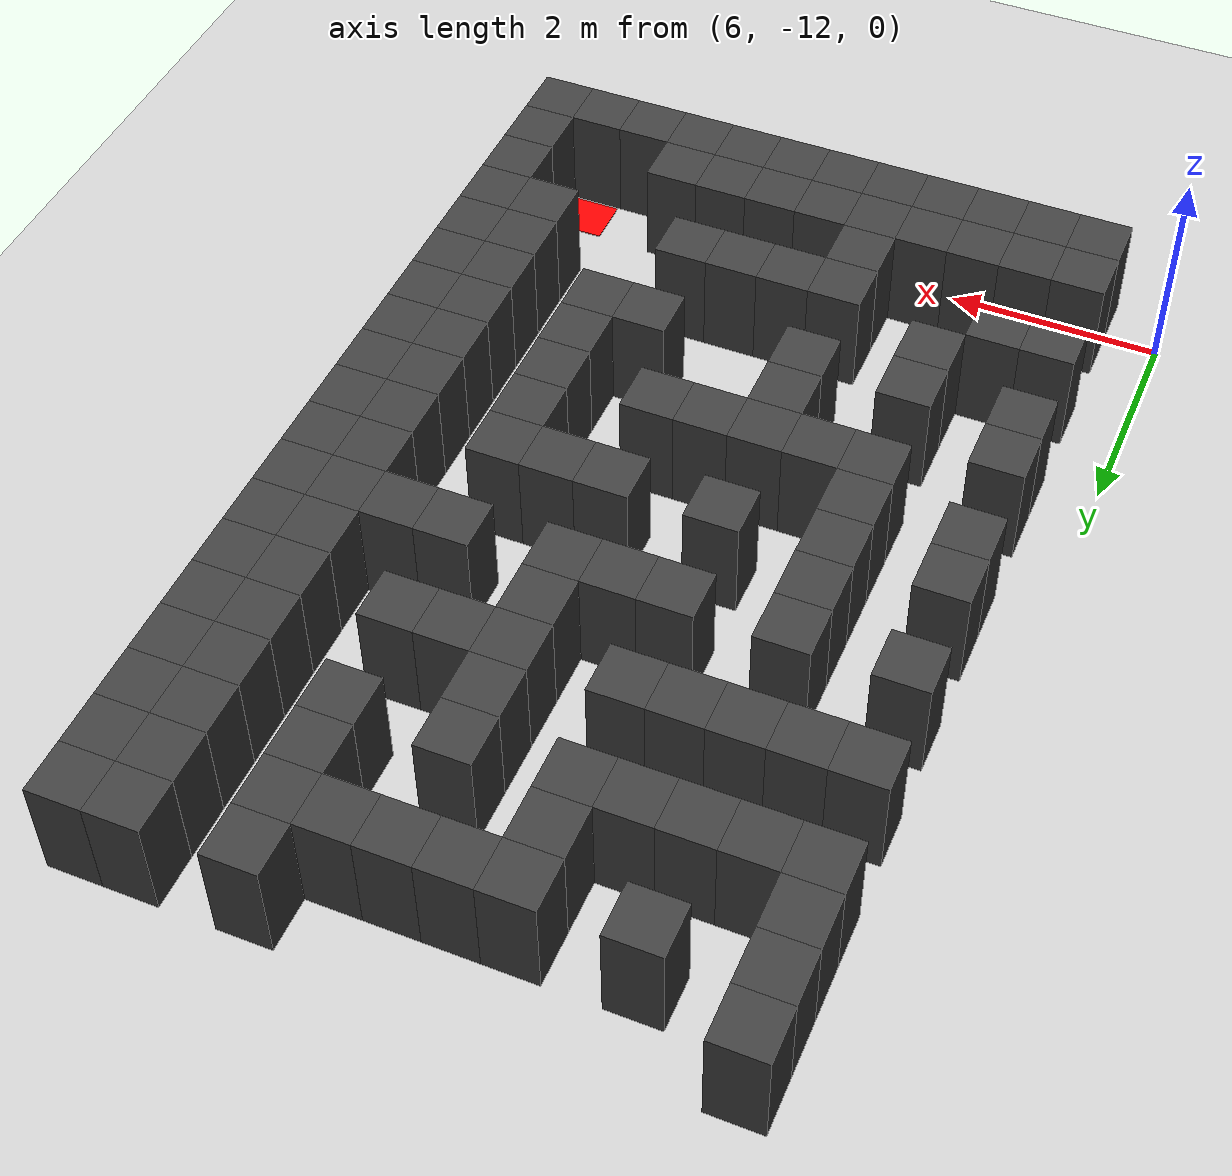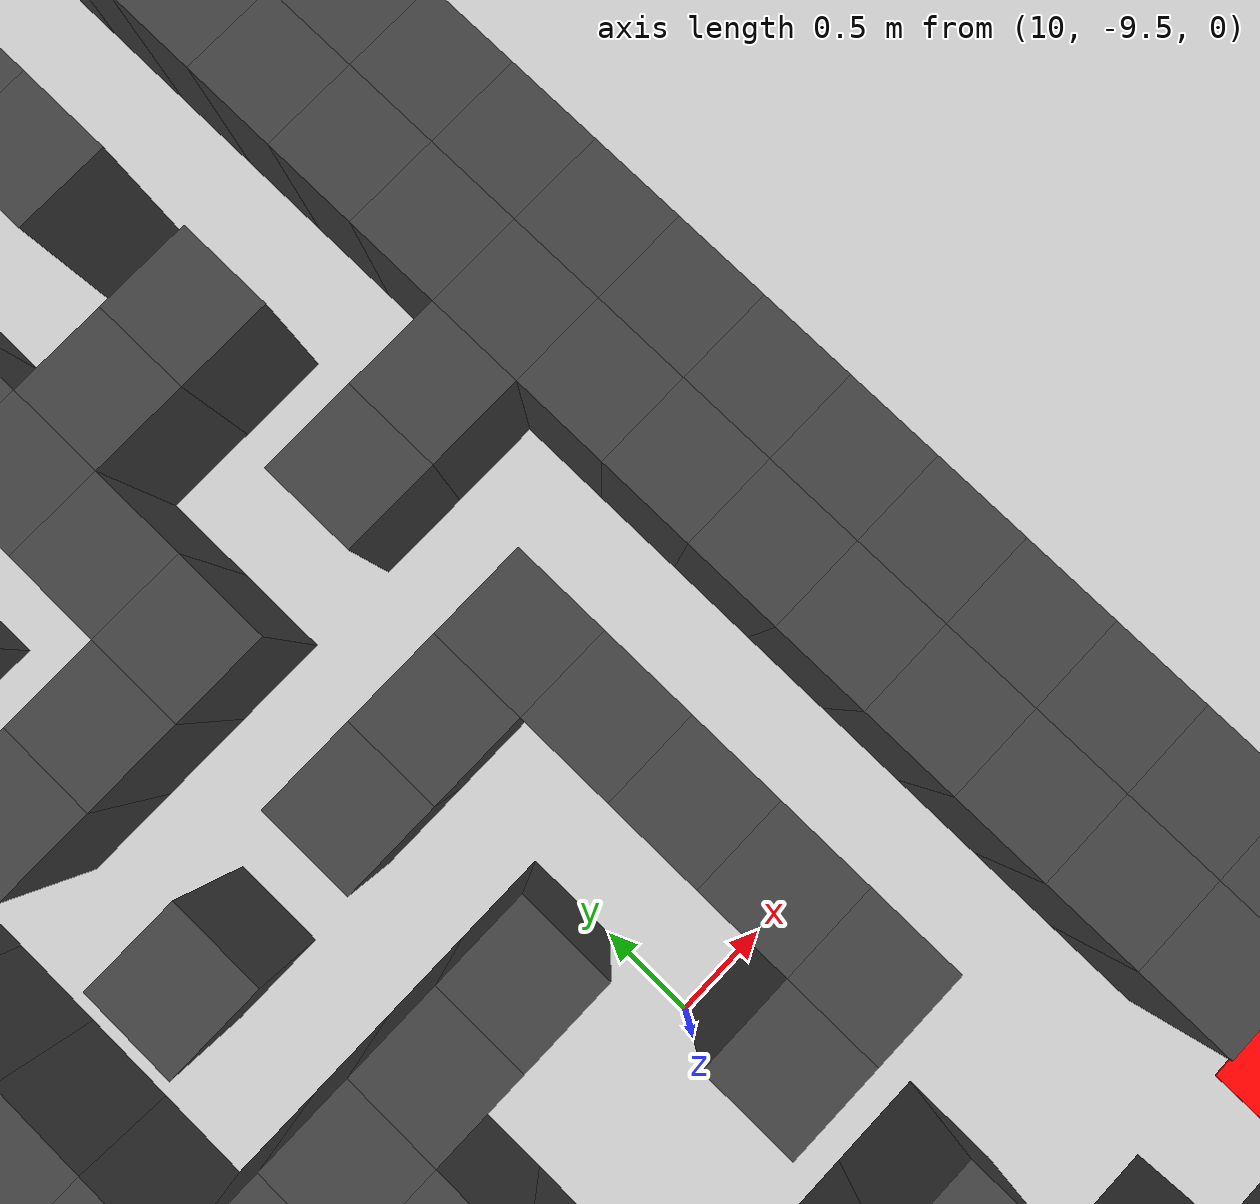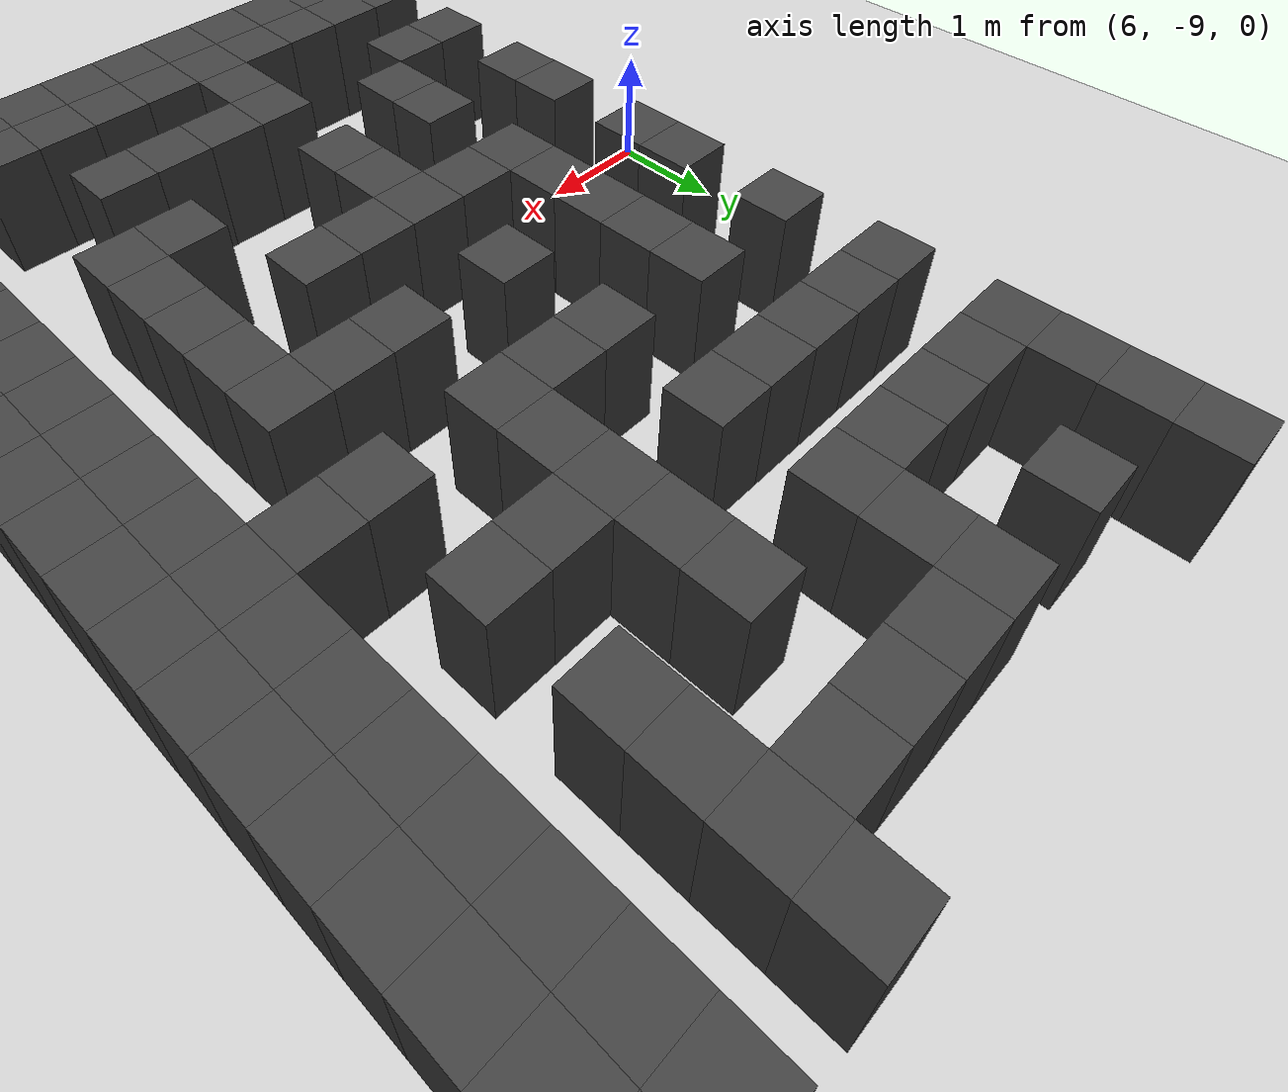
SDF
<sdf version="1.7">
 <world name="map_16603">
  <model name="ground_plane">
   <static>true</static>
   <link name="link">
    <collision name="collision">
     <geometry><plane><normal>0 0 1</normal><size>200 200</size></plane></geometry>
    </collision>
    <visual name="visual">
     <geometry><plane><normal>0 0 1</normal><size>200 200</size></plane></geometry>
     <material><ambient>0.8 0.8 0.8 1</ambient><diffuse>0.8 0.8 0.8 1</diffuse></material>
    </visual>
   </link>
  </model>
  <model name="maze_environment">
   <static>true</static>
   <link name="wall_774">
    <pose>6.750 -3.250 0.500 0 0 0</pose>
    <collision name="col"><geometry><box><size>0.5 0.5 1.0</size></box></geometry></collision>
    <visual name="vis">
     <geometry><box><size>0.5 0.5 1.0</size></box></geometry>
     <material><ambient>0.15 0.15 0.15 1</ambient><diffuse>0.25 0.25 0.25 1</diffuse></material>
    </visual>
   </link>
   <link name="wall_775">
    <pose>10.750 -3.250 0.500 0 0 0</pose>
    <collision name="col"><geometry><box><size>0.5 0.5 1.0</size></box></geometry></collision>
    <visual name="vis">
     <geometry><box><size>0.5 0.5 1.0</size></box></geometry>
     <material><ambient>0.15 0.15 0.15 1</ambient><diffuse>0.25 0.25 0.25 1</diffuse></material>
    </visual>
   </link>
   <link name="wall_776">
    <pose>11.750 -3.250 0.500 0 0 0</pose>
    <collision name="col"><geometry><box><size>0.5 0.5 1.0</size></box></geometry></collision>
    <visual name="vis">
     <geometry><box><size>0.5 0.5 1.0</size></box></geometry>
     <material><ambient>0.15 0.15 0.15 1</ambient><diffuse>0.25 0.25 0.25 1</diffuse></material>
    </visual>
   </link>
   <link name="wall_777">
    <pose>12.250 -3.250 0.500 0 0 0</pose>
    <collision name="col"><geometry><box><size>0.5 0.5 1.0</size></box></geometry></collision>
    <visual name="vis">
     <geometry><box><size>0.5 0.5 1.0</size></box></geometry>
     <material><ambient>0.15 0.15 0.15 1</ambient><diffuse>0.25 0.25 0.25 1</diffuse></material>
    </visual>
   </link>
   <link name="wall_803">
    <pose>6.750 -3.750 0.500 0 0 0</pose>
    <collision name="col"><geometry><box><size>0.5 0.5 1.0</size></box></geometry></collision>
    <visual name="vis">
     <geometry><box><size>0.5 0.5 1.0</size></box></geometry>
     <material><ambient>0.15 0.15 0.15 1</ambient><diffuse>0.25 0.25 0.25 1</diffuse></material>
    </visual>
   </link>
   <link name="wall_804">
    <pose>7.750 -3.750 0.500 0 0 0</pose>
    <collision name="col"><geometry><box><size>0.5 0.5 1.0</size></box></geometry></collision>
    <visual name="vis">
     <geometry><box><size>0.5 0.5 1.0</size></box></geometry>
     <material><ambient>0.15 0.15 0.15 1</ambient><diffuse>0.25 0.25 0.25 1</diffuse></material>
    </visual>
   </link>
   <link name="wall_805">
    <pose>8.750 -3.750 0.500 0 0 0</pose>
    <collision name="col"><geometry><box><size>0.5 0.5 1.0</size></box></geometry></collision>
    <visual name="vis">
     <geometry><box><size>0.5 0.5 1.0</size></box></geometry>
     <material><ambient>0.15 0.15 0.15 1</ambient><diffuse>0.25 0.25 0.25 1</diffuse></material>
    </visual>
   </link>
   <link name="wall_806">
    <pose>9.250 -3.750 0.500 0 0 0</pose>
    <collision name="col"><geometry><box><size>0.5 0.5 1.0</size></box></geometry></collision>
    <visual name="vis">
     <geometry><box><size>0.5 0.5 1.0</size></box></geometry>
     <material><ambient>0.15 0.15 0.15 1</ambient><diffuse>0.25 0.25 0.25 1</diffuse></material>
    </visual>
   </link>
   <link name="wall_807">
    <pose>9.750 -3.750 0.500 0 0 0</pose>
    <collision name="col"><geometry><box><size>0.5 0.5 1.0</size></box></geometry></collision>
    <visual name="vis">
     <geometry><box><size>0.5 0.5 1.0</size></box></geometry>
     <material><ambient>0.15 0.15 0.15 1</ambient><diffuse>0.25 0.25 0.25 1</diffuse></material>
    </visual>
   </link>
   <link name="wall_808">
    <pose>10.250 -3.750 0.500 0 0 0</pose>
    <collision name="col"><geometry><box><size>0.5 0.5 1.0</size></box></geometry></collision>
    <visual name="vis">
     <geometry><box><size>0.5 0.5 1.0</size></box></geometry>
     <material><ambient>0.15 0.15 0.15 1</ambient><diffuse>0.25 0.25 0.25 1</diffuse></material>
    </visual>
   </link>
   <link name="wall_809">
    <pose>10.750 -3.750 0.500 0 0 0</pose>
    <collision name="col"><geometry><box><size>0.5 0.5 1.0</size></box></geometry></collision>
    <visual name="vis">
     <geometry><box><size>0.5 0.5 1.0</size></box></geometry>
     <material><ambient>0.15 0.15 0.15 1</ambient><diffuse>0.25 0.25 0.25 1</diffuse></material>
    </visual>
   </link>
   <link name="wall_810">
    <pose>11.750 -3.750 0.500 0 0 0</pose>
    <collision name="col"><geometry><box><size>0.5 0.5 1.0</size></box></geometry></collision>
    <visual name="vis">
     <geometry><box><size>0.5 0.5 1.0</size></box></geometry>
     <material><ambient>0.15 0.15 0.15 1</ambient><diffuse>0.25 0.25 0.25 1</diffuse></material>
    </visual>
   </link>
   <link name="wall_811">
    <pose>12.250 -3.750 0.500 0 0 0</pose>
    <collision name="col"><geometry><box><size>0.5 0.5 1.0</size></box></geometry></collision>
    <visual name="vis">
     <geometry><box><size>0.5 0.5 1.0</size></box></geometry>
     <material><ambient>0.15 0.15 0.15 1</ambient><diffuse>0.25 0.25 0.25 1</diffuse></material>
    </visual>
   </link>
   <link name="wall_821">
    <pose>6.750 -4.250 0.500 0 0 0</pose>
    <collision name="col"><geometry><box><size>0.5 0.5 1.0</size></box></geometry></collision>
    <visual name="vis">
     <geometry><box><size>0.5 0.5 1.0</size></box></geometry>
     <material><ambient>0.15 0.15 0.15 1</ambient><diffuse>0.25 0.25 0.25 1</diffuse></material>
    </visual>
   </link>
   <link name="wall_822">
    <pose>8.750 -4.250 0.500 0 0 0</pose>
    <collision name="col"><geometry><box><size>0.5 0.5 1.0</size></box></geometry></collision>
    <visual name="vis">
     <geometry><box><size>0.5 0.5 1.0</size></box></geometry>
     <material><ambient>0.15 0.15 0.15 1</ambient><diffuse>0.25 0.25 0.25 1</diffuse></material>
    </visual>
   </link>
   <link name="wall_823">
    <pose>10.750 -4.250 0.500 0 0 0</pose>
    <collision name="col"><geometry><box><size>0.5 0.5 1.0</size></box></geometry></collision>
    <visual name="vis">
     <geometry><box><size>0.5 0.5 1.0</size></box></geometry>
     <material><ambient>0.15 0.15 0.15 1</ambient><diffuse>0.25 0.25 0.25 1</diffuse></material>
    </visual>
   </link>
   <link name="wall_824">
    <pose>11.750 -4.250 0.500 0 0 0</pose>
    <collision name="col"><geometry><box><size>0.5 0.5 1.0</size></box></geometry></collision>
    <visual name="vis">
     <geometry><box><size>0.5 0.5 1.0</size></box></geometry>
     <material><ambient>0.15 0.15 0.15 1</ambient><diffuse>0.25 0.25 0.25 1</diffuse></material>
    </visual>
   </link>
   <link name="wall_825">
    <pose>12.250 -4.250 0.500 0 0 0</pose>
    <collision name="col"><geometry><box><size>0.5 0.5 1.0</size></box></geometry></collision>
    <visual name="vis">
     <geometry><box><size>0.5 0.5 1.0</size></box></geometry>
     <material><ambient>0.15 0.15 0.15 1</ambient><diffuse>0.25 0.25 0.25 1</diffuse></material>
    </visual>
   </link>
   <link name="wall_848">
    <pose>6.750 -4.750 0.500 0 0 0</pose>
    <collision name="col"><geometry><box><size>0.5 0.5 1.0</size></box></geometry></collision>
    <visual name="vis">
     <geometry><box><size>0.5 0.5 1.0</size></box></geometry>
     <material><ambient>0.15 0.15 0.15 1</ambient><diffuse>0.25 0.25 0.25 1</diffuse></material>
    </visual>
   </link>
   <link name="wall_849">
    <pose>7.250 -4.750 0.500 0 0 0</pose>
    <collision name="col"><geometry><box><size>0.5 0.5 1.0</size></box></geometry></collision>
    <visual name="vis">
     <geometry><box><size>0.5 0.5 1.0</size></box></geometry>
     <material><ambient>0.15 0.15 0.15 1</ambient><diffuse>0.25 0.25 0.25 1</diffuse></material>
    </visual>
   </link>
   <link name="wall_850">
    <pose>7.750 -4.750 0.500 0 0 0</pose>
    <collision name="col"><geometry><box><size>0.5 0.5 1.0</size></box></geometry></collision>
    <visual name="vis">
     <geometry><box><size>0.5 0.5 1.0</size></box></geometry>
     <material><ambient>0.15 0.15 0.15 1</ambient><diffuse>0.25 0.25 0.25 1</diffuse></material>
    </visual>
   </link>
   <link name="wall_851">
    <pose>8.250 -4.750 0.500 0 0 0</pose>
    <collision name="col"><geometry><box><size>0.5 0.5 1.0</size></box></geometry></collision>
    <visual name="vis">
     <geometry><box><size>0.5 0.5 1.0</size></box></geometry>
     <material><ambient>0.15 0.15 0.15 1</ambient><diffuse>0.25 0.25 0.25 1</diffuse></material>
    </visual>
   </link>
   <link name="wall_852">
    <pose>8.750 -4.750 0.500 0 0 0</pose>
    <collision name="col"><geometry><box><size>0.5 0.5 1.0</size></box></geometry></collision>
    <visual name="vis">
     <geometry><box><size>0.5 0.5 1.0</size></box></geometry>
     <material><ambient>0.15 0.15 0.15 1</ambient><diffuse>0.25 0.25 0.25 1</diffuse></material>
    </visual>
   </link>
   <link name="wall_853">
    <pose>9.750 -4.750 0.500 0 0 0</pose>
    <collision name="col"><geometry><box><size>0.5 0.5 1.0</size></box></geometry></collision>
    <visual name="vis">
     <geometry><box><size>0.5 0.5 1.0</size></box></geometry>
     <material><ambient>0.15 0.15 0.15 1</ambient><diffuse>0.25 0.25 0.25 1</diffuse></material>
    </visual>
   </link>
   <link name="wall_854">
    <pose>10.750 -4.750 0.500 0 0 0</pose>
    <collision name="col"><geometry><box><size>0.5 0.5 1.0</size></box></geometry></collision>
    <visual name="vis">
     <geometry><box><size>0.5 0.5 1.0</size></box></geometry>
     <material><ambient>0.15 0.15 0.15 1</ambient><diffuse>0.25 0.25 0.25 1</diffuse></material>
    </visual>
   </link>
   <link name="wall_855">
    <pose>11.750 -4.750 0.500 0 0 0</pose>
    <collision name="col"><geometry><box><size>0.5 0.5 1.0</size></box></geometry></collision>
    <visual name="vis">
     <geometry><box><size>0.5 0.5 1.0</size></box></geometry>
     <material><ambient>0.15 0.15 0.15 1</ambient><diffuse>0.25 0.25 0.25 1</diffuse></material>
    </visual>
   </link>
   <link name="wall_856">
    <pose>12.250 -4.750 0.500 0 0 0</pose>
    <collision name="col"><geometry><box><size>0.5 0.5 1.0</size></box></geometry></collision>
    <visual name="vis">
     <geometry><box><size>0.5 0.5 1.0</size></box></geometry>
     <material><ambient>0.15 0.15 0.15 1</ambient><diffuse>0.25 0.25 0.25 1</diffuse></material>
    </visual>
   </link>
   <link name="wall_868">
    <pose>9.750 -5.250 0.500 0 0 0</pose>
    <collision name="col"><geometry><box><size>0.5 0.5 1.0</size></box></geometry></collision>
    <visual name="vis">
     <geometry><box><size>0.5 0.5 1.0</size></box></geometry>
     <material><ambient>0.15 0.15 0.15 1</ambient><diffuse>0.25 0.25 0.25 1</diffuse></material>
    </visual>
   </link>
   <link name="wall_869">
    <pose>11.750 -5.250 0.500 0 0 0</pose>
    <collision name="col"><geometry><box><size>0.5 0.5 1.0</size></box></geometry></collision>
    <visual name="vis">
     <geometry><box><size>0.5 0.5 1.0</size></box></geometry>
     <material><ambient>0.15 0.15 0.15 1</ambient><diffuse>0.25 0.25 0.25 1</diffuse></material>
    </visual>
   </link>
   <link name="wall_870">
    <pose>12.250 -5.250 0.500 0 0 0</pose>
    <collision name="col"><geometry><box><size>0.5 0.5 1.0</size></box></geometry></collision>
    <visual name="vis">
     <geometry><box><size>0.5 0.5 1.0</size></box></geometry>
     <material><ambient>0.15 0.15 0.15 1</ambient><diffuse>0.25 0.25 0.25 1</diffuse></material>
    </visual>
   </link>
   <link name="wall_897">
    <pose>6.750 -5.750 0.500 0 0 0</pose>
    <collision name="col"><geometry><box><size>0.5 0.5 1.0</size></box></geometry></collision>
    <visual name="vis">
     <geometry><box><size>0.5 0.5 1.0</size></box></geometry>
     <material><ambient>0.15 0.15 0.15 1</ambient><diffuse>0.25 0.25 0.25 1</diffuse></material>
    </visual>
   </link>
   <link name="wall_898">
    <pose>7.250 -5.750 0.500 0 0 0</pose>
    <collision name="col"><geometry><box><size>0.5 0.5 1.0</size></box></geometry></collision>
    <visual name="vis">
     <geometry><box><size>0.5 0.5 1.0</size></box></geometry>
     <material><ambient>0.15 0.15 0.15 1</ambient><diffuse>0.25 0.25 0.25 1</diffuse></material>
    </visual>
   </link>
   <link name="wall_899">
    <pose>7.750 -5.750 0.500 0 0 0</pose>
    <collision name="col"><geometry><box><size>0.5 0.5 1.0</size></box></geometry></collision>
    <visual name="vis">
     <geometry><box><size>0.5 0.5 1.0</size></box></geometry>
     <material><ambient>0.15 0.15 0.15 1</ambient><diffuse>0.25 0.25 0.25 1</diffuse></material>
    </visual>
   </link>
   <link name="wall_900">
    <pose>8.250 -5.750 0.500 0 0 0</pose>
    <collision name="col"><geometry><box><size>0.5 0.5 1.0</size></box></geometry></collision>
    <visual name="vis">
     <geometry><box><size>0.5 0.5 1.0</size></box></geometry>
     <material><ambient>0.15 0.15 0.15 1</ambient><diffuse>0.25 0.25 0.25 1</diffuse></material>
    </visual>
   </link>
   <link name="wall_901">
    <pose>8.750 -5.750 0.500 0 0 0</pose>
    <collision name="col"><geometry><box><size>0.5 0.5 1.0</size></box></geometry></collision>
    <visual name="vis">
     <geometry><box><size>0.5 0.5 1.0</size></box></geometry>
     <material><ambient>0.15 0.15 0.15 1</ambient><diffuse>0.25 0.25 0.25 1</diffuse></material>
    </visual>
   </link>
   <link name="wall_902">
    <pose>9.750 -5.750 0.500 0 0 0</pose>
    <collision name="col"><geometry><box><size>0.5 0.5 1.0</size></box></geometry></collision>
    <visual name="vis">
     <geometry><box><size>0.5 0.5 1.0</size></box></geometry>
     <material><ambient>0.15 0.15 0.15 1</ambient><diffuse>0.25 0.25 0.25 1</diffuse></material>
    </visual>
   </link>
   <link name="wall_903">
    <pose>10.250 -5.750 0.500 0 0 0</pose>
    <collision name="col"><geometry><box><size>0.5 0.5 1.0</size></box></geometry></collision>
    <visual name="vis">
     <geometry><box><size>0.5 0.5 1.0</size></box></geometry>
     <material><ambient>0.15 0.15 0.15 1</ambient><diffuse>0.25 0.25 0.25 1</diffuse></material>
    </visual>
   </link>
   <link name="wall_904">
    <pose>10.750 -5.750 0.500 0 0 0</pose>
    <collision name="col"><geometry><box><size>0.5 0.5 1.0</size></box></geometry></collision>
    <visual name="vis">
     <geometry><box><size>0.5 0.5 1.0</size></box></geometry>
     <material><ambient>0.15 0.15 0.15 1</ambient><diffuse>0.25 0.25 0.25 1</diffuse></material>
    </visual>
   </link>
   <link name="wall_905">
    <pose>11.750 -5.750 0.500 0 0 0</pose>
    <collision name="col"><geometry><box><size>0.5 0.5 1.0</size></box></geometry></collision>
    <visual name="vis">
     <geometry><box><size>0.5 0.5 1.0</size></box></geometry>
     <material><ambient>0.15 0.15 0.15 1</ambient><diffuse>0.25 0.25 0.25 1</diffuse></material>
    </visual>
   </link>
   <link name="wall_906">
    <pose>12.250 -5.750 0.500 0 0 0</pose>
    <collision name="col"><geometry><box><size>0.5 0.5 1.0</size></box></geometry></collision>
    <visual name="vis">
     <geometry><box><size>0.5 0.5 1.0</size></box></geometry>
     <material><ambient>0.15 0.15 0.15 1</ambient><diffuse>0.25 0.25 0.25 1</diffuse></material>
    </visual>
   </link>
   <link name="wall_917">
    <pose>9.750 -6.250 0.500 0 0 0</pose>
    <collision name="col"><geometry><box><size>0.5 0.5 1.0</size></box></geometry></collision>
    <visual name="vis">
     <geometry><box><size>0.5 0.5 1.0</size></box></geometry>
     <material><ambient>0.15 0.15 0.15 1</ambient><diffuse>0.25 0.25 0.25 1</diffuse></material>
    </visual>
   </link>
   <link name="wall_918">
    <pose>11.750 -6.250 0.500 0 0 0</pose>
    <collision name="col"><geometry><box><size>0.5 0.5 1.0</size></box></geometry></collision>
    <visual name="vis">
     <geometry><box><size>0.5 0.5 1.0</size></box></geometry>
     <material><ambient>0.15 0.15 0.15 1</ambient><diffuse>0.25 0.25 0.25 1</diffuse></material>
    </visual>
   </link>
   <link name="wall_919">
    <pose>12.250 -6.250 0.500 0 0 0</pose>
    <collision name="col"><geometry><box><size>0.5 0.5 1.0</size></box></geometry></collision>
    <visual name="vis">
     <geometry><box><size>0.5 0.5 1.0</size></box></geometry>
     <material><ambient>0.15 0.15 0.15 1</ambient><diffuse>0.25 0.25 0.25 1</diffuse></material>
    </visual>
   </link>
   <link name="wall_949">
    <pose>6.750 -6.750 0.500 0 0 0</pose>
    <collision name="col"><geometry><box><size>0.5 0.5 1.0</size></box></geometry></collision>
    <visual name="vis">
     <geometry><box><size>0.5 0.5 1.0</size></box></geometry>
     <material><ambient>0.15 0.15 0.15 1</ambient><diffuse>0.25 0.25 0.25 1</diffuse></material>
    </visual>
   </link>
   <link name="wall_950">
    <pose>7.750 -6.750 0.500 0 0 0</pose>
    <collision name="col"><geometry><box><size>0.5 0.5 1.0</size></box></geometry></collision>
    <visual name="vis">
     <geometry><box><size>0.5 0.5 1.0</size></box></geometry>
     <material><ambient>0.15 0.15 0.15 1</ambient><diffuse>0.25 0.25 0.25 1</diffuse></material>
    </visual>
   </link>
   <link name="wall_951">
    <pose>8.750 -6.750 0.500 0 0 0</pose>
    <collision name="col"><geometry><box><size>0.5 0.5 1.0</size></box></geometry></collision>
    <visual name="vis">
     <geometry><box><size>0.5 0.5 1.0</size></box></geometry>
     <material><ambient>0.15 0.15 0.15 1</ambient><diffuse>0.25 0.25 0.25 1</diffuse></material>
    </visual>
   </link>
   <link name="wall_952">
    <pose>9.250 -6.750 0.500 0 0 0</pose>
    <collision name="col"><geometry><box><size>0.5 0.5 1.0</size></box></geometry></collision>
    <visual name="vis">
     <geometry><box><size>0.5 0.5 1.0</size></box></geometry>
     <material><ambient>0.15 0.15 0.15 1</ambient><diffuse>0.25 0.25 0.25 1</diffuse></material>
    </visual>
   </link>
   <link name="wall_953">
    <pose>9.750 -6.750 0.500 0 0 0</pose>
    <collision name="col"><geometry><box><size>0.5 0.5 1.0</size></box></geometry></collision>
    <visual name="vis">
     <geometry><box><size>0.5 0.5 1.0</size></box></geometry>
     <material><ambient>0.15 0.15 0.15 1</ambient><diffuse>0.25 0.25 0.25 1</diffuse></material>
    </visual>
   </link>
   <link name="wall_954">
    <pose>10.750 -6.750 0.500 0 0 0</pose>
    <collision name="col"><geometry><box><size>0.5 0.5 1.0</size></box></geometry></collision>
    <visual name="vis">
     <geometry><box><size>0.5 0.5 1.0</size></box></geometry>
     <material><ambient>0.15 0.15 0.15 1</ambient><diffuse>0.25 0.25 0.25 1</diffuse></material>
    </visual>
   </link>
   <link name="wall_955">
    <pose>11.250 -6.750 0.500 0 0 0</pose>
    <collision name="col"><geometry><box><size>0.5 0.5 1.0</size></box></geometry></collision>
    <visual name="vis">
     <geometry><box><size>0.5 0.5 1.0</size></box></geometry>
     <material><ambient>0.15 0.15 0.15 1</ambient><diffuse>0.25 0.25 0.25 1</diffuse></material>
    </visual>
   </link>
   <link name="wall_956">
    <pose>11.750 -6.750 0.500 0 0 0</pose>
    <collision name="col"><geometry><box><size>0.5 0.5 1.0</size></box></geometry></collision>
    <visual name="vis">
     <geometry><box><size>0.5 0.5 1.0</size></box></geometry>
     <material><ambient>0.15 0.15 0.15 1</ambient><diffuse>0.25 0.25 0.25 1</diffuse></material>
    </visual>
   </link>
   <link name="wall_957">
    <pose>12.250 -6.750 0.500 0 0 0</pose>
    <collision name="col"><geometry><box><size>0.5 0.5 1.0</size></box></geometry></collision>
    <visual name="vis">
     <geometry><box><size>0.5 0.5 1.0</size></box></geometry>
     <material><ambient>0.15 0.15 0.15 1</ambient><diffuse>0.25 0.25 0.25 1</diffuse></material>
    </visual>
   </link>
   <link name="wall_965">
    <pose>7.750 -7.250 0.500 0 0 0</pose>
    <collision name="col"><geometry><box><size>0.5 0.5 1.0</size></box></geometry></collision>
    <visual name="vis">
     <geometry><box><size>0.5 0.5 1.0</size></box></geometry>
     <material><ambient>0.15 0.15 0.15 1</ambient><diffuse>0.25 0.25 0.25 1</diffuse></material>
    </visual>
   </link>
   <link name="wall_966">
    <pose>11.750 -7.250 0.500 0 0 0</pose>
    <collision name="col"><geometry><box><size>0.5 0.5 1.0</size></box></geometry></collision>
    <visual name="vis">
     <geometry><box><size>0.5 0.5 1.0</size></box></geometry>
     <material><ambient>0.15 0.15 0.15 1</ambient><diffuse>0.25 0.25 0.25 1</diffuse></material>
    </visual>
   </link>
   <link name="wall_967">
    <pose>12.250 -7.250 0.500 0 0 0</pose>
    <collision name="col"><geometry><box><size>0.5 0.5 1.0</size></box></geometry></collision>
    <visual name="vis">
     <geometry><box><size>0.5 0.5 1.0</size></box></geometry>
     <material><ambient>0.15 0.15 0.15 1</ambient><diffuse>0.25 0.25 0.25 1</diffuse></material>
    </visual>
   </link>
   <link name="wall_993">
    <pose>6.750 -7.750 0.500 0 0 0</pose>
    <collision name="col"><geometry><box><size>0.5 0.5 1.0</size></box></geometry></collision>
    <visual name="vis">
     <geometry><box><size>0.5 0.5 1.0</size></box></geometry>
     <material><ambient>0.15 0.15 0.15 1</ambient><diffuse>0.25 0.25 0.25 1</diffuse></material>
    </visual>
   </link>
   <link name="wall_994">
    <pose>7.750 -7.750 0.500 0 0 0</pose>
    <collision name="col"><geometry><box><size>0.5 0.5 1.0</size></box></geometry></collision>
    <visual name="vis">
     <geometry><box><size>0.5 0.5 1.0</size></box></geometry>
     <material><ambient>0.15 0.15 0.15 1</ambient><diffuse>0.25 0.25 0.25 1</diffuse></material>
    </visual>
   </link>
   <link name="wall_995">
    <pose>8.750 -7.750 0.500 0 0 0</pose>
    <collision name="col"><geometry><box><size>0.5 0.5 1.0</size></box></geometry></collision>
    <visual name="vis">
     <geometry><box><size>0.5 0.5 1.0</size></box></geometry>
     <material><ambient>0.15 0.15 0.15 1</ambient><diffuse>0.25 0.25 0.25 1</diffuse></material>
    </visual>
   </link>
   <link name="wall_996">
    <pose>9.750 -7.750 0.500 0 0 0</pose>
    <collision name="col"><geometry><box><size>0.5 0.5 1.0</size></box></geometry></collision>
    <visual name="vis">
     <geometry><box><size>0.5 0.5 1.0</size></box></geometry>
     <material><ambient>0.15 0.15 0.15 1</ambient><diffuse>0.25 0.25 0.25 1</diffuse></material>
    </visual>
   </link>
   <link name="wall_997">
    <pose>10.250 -7.750 0.500 0 0 0</pose>
    <collision name="col"><geometry><box><size>0.5 0.5 1.0</size></box></geometry></collision>
    <visual name="vis">
     <geometry><box><size>0.5 0.5 1.0</size></box></geometry>
     <material><ambient>0.15 0.15 0.15 1</ambient><diffuse>0.25 0.25 0.25 1</diffuse></material>
    </visual>
   </link>
   <link name="wall_998">
    <pose>10.750 -7.750 0.500 0 0 0</pose>
    <collision name="col"><geometry><box><size>0.5 0.5 1.0</size></box></geometry></collision>
    <visual name="vis">
     <geometry><box><size>0.5 0.5 1.0</size></box></geometry>
     <material><ambient>0.15 0.15 0.15 1</ambient><diffuse>0.25 0.25 0.25 1</diffuse></material>
    </visual>
   </link>
   <link name="wall_999">
    <pose>11.750 -7.750 0.500 0 0 0</pose>
    <collision name="col"><geometry><box><size>0.5 0.5 1.0</size></box></geometry></collision>
    <visual name="vis">
     <geometry><box><size>0.5 0.5 1.0</size></box></geometry>
     <material><ambient>0.15 0.15 0.15 1</ambient><diffuse>0.25 0.25 0.25 1</diffuse></material>
    </visual>
   </link>
   <link name="wall_1000">
    <pose>12.250 -7.750 0.500 0 0 0</pose>
    <collision name="col"><geometry><box><size>0.5 0.5 1.0</size></box></geometry></collision>
    <visual name="vis">
     <geometry><box><size>0.5 0.5 1.0</size></box></geometry>
     <material><ambient>0.15 0.15 0.15 1</ambient><diffuse>0.25 0.25 0.25 1</diffuse></material>
    </visual>
   </link>
   <link name="wall_1009">
    <pose>6.750 -8.250 0.500 0 0 0</pose>
    <collision name="col"><geometry><box><size>0.5 0.5 1.0</size></box></geometry></collision>
    <visual name="vis">
     <geometry><box><size>0.5 0.5 1.0</size></box></geometry>
     <material><ambient>0.15 0.15 0.15 1</ambient><diffuse>0.25 0.25 0.25 1</diffuse></material>
    </visual>
   </link>
   <link name="wall_1010">
    <pose>7.750 -8.250 0.500 0 0 0</pose>
    <collision name="col"><geometry><box><size>0.5 0.5 1.0</size></box></geometry></collision>
    <visual name="vis">
     <geometry><box><size>0.5 0.5 1.0</size></box></geometry>
     <material><ambient>0.15 0.15 0.15 1</ambient><diffuse>0.25 0.25 0.25 1</diffuse></material>
    </visual>
   </link>
   <link name="wall_1011">
    <pose>10.750 -8.250 0.500 0 0 0</pose>
    <collision name="col"><geometry><box><size>0.5 0.5 1.0</size></box></geometry></collision>
    <visual name="vis">
     <geometry><box><size>0.5 0.5 1.0</size></box></geometry>
     <material><ambient>0.15 0.15 0.15 1</ambient><diffuse>0.25 0.25 0.25 1</diffuse></material>
    </visual>
   </link>
   <link name="wall_1012">
    <pose>11.750 -8.250 0.500 0 0 0</pose>
    <collision name="col"><geometry><box><size>0.5 0.5 1.0</size></box></geometry></collision>
    <visual name="vis">
     <geometry><box><size>0.5 0.5 1.0</size></box></geometry>
     <material><ambient>0.15 0.15 0.15 1</ambient><diffuse>0.25 0.25 0.25 1</diffuse></material>
    </visual>
   </link>
   <link name="wall_1013">
    <pose>12.250 -8.250 0.500 0 0 0</pose>
    <collision name="col"><geometry><box><size>0.5 0.5 1.0</size></box></geometry></collision>
    <visual name="vis">
     <geometry><box><size>0.5 0.5 1.0</size></box></geometry>
     <material><ambient>0.15 0.15 0.15 1</ambient><diffuse>0.25 0.25 0.25 1</diffuse></material>
    </visual>
   </link>
   <link name="wall_1039">
    <pose>7.750 -8.750 0.500 0 0 0</pose>
    <collision name="col"><geometry><box><size>0.5 0.5 1.0</size></box></geometry></collision>
    <visual name="vis">
     <geometry><box><size>0.5 0.5 1.0</size></box></geometry>
     <material><ambient>0.15 0.15 0.15 1</ambient><diffuse>0.25 0.25 0.25 1</diffuse></material>
    </visual>
   </link>
   <link name="wall_1040">
    <pose>8.250 -8.750 0.500 0 0 0</pose>
    <collision name="col"><geometry><box><size>0.5 0.5 1.0</size></box></geometry></collision>
    <visual name="vis">
     <geometry><box><size>0.5 0.5 1.0</size></box></geometry>
     <material><ambient>0.15 0.15 0.15 1</ambient><diffuse>0.25 0.25 0.25 1</diffuse></material>
    </visual>
   </link>
   <link name="wall_1041">
    <pose>8.750 -8.750 0.500 0 0 0</pose>
    <collision name="col"><geometry><box><size>0.5 0.5 1.0</size></box></geometry></collision>
    <visual name="vis">
     <geometry><box><size>0.5 0.5 1.0</size></box></geometry>
     <material><ambient>0.15 0.15 0.15 1</ambient><diffuse>0.25 0.25 0.25 1</diffuse></material>
    </visual>
   </link>
   <link name="wall_1042">
    <pose>9.250 -8.750 0.500 0 0 0</pose>
    <collision name="col"><geometry><box><size>0.5 0.5 1.0</size></box></geometry></collision>
    <visual name="vis">
     <geometry><box><size>0.5 0.5 1.0</size></box></geometry>
     <material><ambient>0.15 0.15 0.15 1</ambient><diffuse>0.25 0.25 0.25 1</diffuse></material>
    </visual>
   </link>
   <link name="wall_1043">
    <pose>9.750 -8.750 0.500 0 0 0</pose>
    <collision name="col"><geometry><box><size>0.5 0.5 1.0</size></box></geometry></collision>
    <visual name="vis">
     <geometry><box><size>0.5 0.5 1.0</size></box></geometry>
     <material><ambient>0.15 0.15 0.15 1</ambient><diffuse>0.25 0.25 0.25 1</diffuse></material>
    </visual>
   </link>
   <link name="wall_1044">
    <pose>10.750 -8.750 0.500 0 0 0</pose>
    <collision name="col"><geometry><box><size>0.5 0.5 1.0</size></box></geometry></collision>
    <visual name="vis">
     <geometry><box><size>0.5 0.5 1.0</size></box></geometry>
     <material><ambient>0.15 0.15 0.15 1</ambient><diffuse>0.25 0.25 0.25 1</diffuse></material>
    </visual>
   </link>
   <link name="wall_1045">
    <pose>11.750 -8.750 0.500 0 0 0</pose>
    <collision name="col"><geometry><box><size>0.5 0.5 1.0</size></box></geometry></collision>
    <visual name="vis">
     <geometry><box><size>0.5 0.5 1.0</size></box></geometry>
     <material><ambient>0.15 0.15 0.15 1</ambient><diffuse>0.25 0.25 0.25 1</diffuse></material>
    </visual>
   </link>
   <link name="wall_1046">
    <pose>12.250 -8.750 0.500 0 0 0</pose>
    <collision name="col"><geometry><box><size>0.5 0.5 1.0</size></box></geometry></collision>
    <visual name="vis">
     <geometry><box><size>0.5 0.5 1.0</size></box></geometry>
     <material><ambient>0.15 0.15 0.15 1</ambient><diffuse>0.25 0.25 0.25 1</diffuse></material>
    </visual>
   </link>
   <link name="wall_1058">
    <pose>6.750 -9.250 0.500 0 0 0</pose>
    <collision name="col"><geometry><box><size>0.5 0.5 1.0</size></box></geometry></collision>
    <visual name="vis">
     <geometry><box><size>0.5 0.5 1.0</size></box></geometry>
     <material><ambient>0.15 0.15 0.15 1</ambient><diffuse>0.25 0.25 0.25 1</diffuse></material>
    </visual>
   </link>
   <link name="wall_1059">
    <pose>8.750 -9.250 0.500 0 0 0</pose>
    <collision name="col"><geometry><box><size>0.5 0.5 1.0</size></box></geometry></collision>
    <visual name="vis">
     <geometry><box><size>0.5 0.5 1.0</size></box></geometry>
     <material><ambient>0.15 0.15 0.15 1</ambient><diffuse>0.25 0.25 0.25 1</diffuse></material>
    </visual>
   </link>
   <link name="wall_1060">
    <pose>10.750 -9.250 0.500 0 0 0</pose>
    <collision name="col"><geometry><box><size>0.5 0.5 1.0</size></box></geometry></collision>
    <visual name="vis">
     <geometry><box><size>0.5 0.5 1.0</size></box></geometry>
     <material><ambient>0.15 0.15 0.15 1</ambient><diffuse>0.25 0.25 0.25 1</diffuse></material>
    </visual>
   </link>
   <link name="wall_1061">
    <pose>11.750 -9.250 0.500 0 0 0</pose>
    <collision name="col"><geometry><box><size>0.5 0.5 1.0</size></box></geometry></collision>
    <visual name="vis">
     <geometry><box><size>0.5 0.5 1.0</size></box></geometry>
     <material><ambient>0.15 0.15 0.15 1</ambient><diffuse>0.25 0.25 0.25 1</diffuse></material>
    </visual>
   </link>
   <link name="wall_1062">
    <pose>12.250 -9.250 0.500 0 0 0</pose>
    <collision name="col"><geometry><box><size>0.5 0.5 1.0</size></box></geometry></collision>
    <visual name="vis">
     <geometry><box><size>0.5 0.5 1.0</size></box></geometry>
     <material><ambient>0.15 0.15 0.15 1</ambient><diffuse>0.25 0.25 0.25 1</diffuse></material>
    </visual>
   </link>
   <link name="wall_1085">
    <pose>6.750 -9.750 0.500 0 0 0</pose>
    <collision name="col"><geometry><box><size>0.5 0.5 1.0</size></box></geometry></collision>
    <visual name="vis">
     <geometry><box><size>0.5 0.5 1.0</size></box></geometry>
     <material><ambient>0.15 0.15 0.15 1</ambient><diffuse>0.25 0.25 0.25 1</diffuse></material>
    </visual>
   </link>
   <link name="wall_1086">
    <pose>7.750 -9.750 0.500 0 0 0</pose>
    <collision name="col"><geometry><box><size>0.5 0.5 1.0</size></box></geometry></collision>
    <visual name="vis">
     <geometry><box><size>0.5 0.5 1.0</size></box></geometry>
     <material><ambient>0.15 0.15 0.15 1</ambient><diffuse>0.25 0.25 0.25 1</diffuse></material>
    </visual>
   </link>
   <link name="wall_1087">
    <pose>8.750 -9.750 0.500 0 0 0</pose>
    <collision name="col"><geometry><box><size>0.5 0.5 1.0</size></box></geometry></collision>
    <visual name="vis">
     <geometry><box><size>0.5 0.5 1.0</size></box></geometry>
     <material><ambient>0.15 0.15 0.15 1</ambient><diffuse>0.25 0.25 0.25 1</diffuse></material>
    </visual>
   </link>
   <link name="wall_1088">
    <pose>10.250 -9.750 0.500 0 0 0</pose>
    <collision name="col"><geometry><box><size>0.5 0.5 1.0</size></box></geometry></collision>
    <visual name="vis">
     <geometry><box><size>0.5 0.5 1.0</size></box></geometry>
     <material><ambient>0.15 0.15 0.15 1</ambient><diffuse>0.25 0.25 0.25 1</diffuse></material>
    </visual>
   </link>
   <link name="wall_1089">
    <pose>10.750 -9.750 0.500 0 0 0</pose>
    <collision name="col"><geometry><box><size>0.5 0.5 1.0</size></box></geometry></collision>
    <visual name="vis">
     <geometry><box><size>0.5 0.5 1.0</size></box></geometry>
     <material><ambient>0.15 0.15 0.15 1</ambient><diffuse>0.25 0.25 0.25 1</diffuse></material>
    </visual>
   </link>
   <link name="wall_1090">
    <pose>11.750 -9.750 0.500 0 0 0</pose>
    <collision name="col"><geometry><box><size>0.5 0.5 1.0</size></box></geometry></collision>
    <visual name="vis">
     <geometry><box><size>0.5 0.5 1.0</size></box></geometry>
     <material><ambient>0.15 0.15 0.15 1</ambient><diffuse>0.25 0.25 0.25 1</diffuse></material>
    </visual>
   </link>
   <link name="wall_1091">
    <pose>12.250 -9.750 0.500 0 0 0</pose>
    <collision name="col"><geometry><box><size>0.5 0.5 1.0</size></box></geometry></collision>
    <visual name="vis">
     <geometry><box><size>0.5 0.5 1.0</size></box></geometry>
     <material><ambient>0.15 0.15 0.15 1</ambient><diffuse>0.25 0.25 0.25 1</diffuse></material>
    </visual>
   </link>
   <link name="wall_1103">
    <pose>7.750 -10.250 0.500 0 0 0</pose>
    <collision name="col"><geometry><box><size>0.5 0.5 1.0</size></box></geometry></collision>
    <visual name="vis">
     <geometry><box><size>0.5 0.5 1.0</size></box></geometry>
     <material><ambient>0.15 0.15 0.15 1</ambient><diffuse>0.25 0.25 0.25 1</diffuse></material>
    </visual>
   </link>
   <link name="wall_1104">
    <pose>11.750 -10.250 0.500 0 0 0</pose>
    <collision name="col"><geometry><box><size>0.5 0.5 1.0</size></box></geometry></collision>
    <visual name="vis">
     <geometry><box><size>0.5 0.5 1.0</size></box></geometry>
     <material><ambient>0.15 0.15 0.15 1</ambient><diffuse>0.25 0.25 0.25 1</diffuse></material>
    </visual>
   </link>
   <link name="wall_1105">
    <pose>12.250 -10.250 0.500 0 0 0</pose>
    <collision name="col"><geometry><box><size>0.5 0.5 1.0</size></box></geometry></collision>
    <visual name="vis">
     <geometry><box><size>0.5 0.5 1.0</size></box></geometry>
     <material><ambient>0.15 0.15 0.15 1</ambient><diffuse>0.25 0.25 0.25 1</diffuse></material>
    </visual>
   </link>
   <link name="wall_1129">
    <pose>6.750 -10.750 0.500 0 0 0</pose>
    <collision name="col"><geometry><box><size>0.5 0.5 1.0</size></box></geometry></collision>
    <visual name="vis">
     <geometry><box><size>0.5 0.5 1.0</size></box></geometry>
     <material><ambient>0.15 0.15 0.15 1</ambient><diffuse>0.25 0.25 0.25 1</diffuse></material>
    </visual>
   </link>
   <link name="wall_1130">
    <pose>7.250 -10.750 0.500 0 0 0</pose>
    <collision name="col"><geometry><box><size>0.5 0.5 1.0</size></box></geometry></collision>
    <visual name="vis">
     <geometry><box><size>0.5 0.5 1.0</size></box></geometry>
     <material><ambient>0.15 0.15 0.15 1</ambient><diffuse>0.25 0.25 0.25 1</diffuse></material>
    </visual>
   </link>
   <link name="wall_1131">
    <pose>8.750 -10.750 0.500 0 0 0</pose>
    <collision name="col"><geometry><box><size>0.5 0.5 1.0</size></box></geometry></collision>
    <visual name="vis">
     <geometry><box><size>0.5 0.5 1.0</size></box></geometry>
     <material><ambient>0.15 0.15 0.15 1</ambient><diffuse>0.25 0.25 0.25 1</diffuse></material>
    </visual>
   </link>
   <link name="wall_1132">
    <pose>9.250 -10.750 0.500 0 0 0</pose>
    <collision name="col"><geometry><box><size>0.5 0.5 1.0</size></box></geometry></collision>
    <visual name="vis">
     <geometry><box><size>0.5 0.5 1.0</size></box></geometry>
     <material><ambient>0.15 0.15 0.15 1</ambient><diffuse>0.25 0.25 0.25 1</diffuse></material>
    </visual>
   </link>
   <link name="wall_1133">
    <pose>9.750 -10.750 0.500 0 0 0</pose>
    <collision name="col"><geometry><box><size>0.5 0.5 1.0</size></box></geometry></collision>
    <visual name="vis">
     <geometry><box><size>0.5 0.5 1.0</size></box></geometry>
     <material><ambient>0.15 0.15 0.15 1</ambient><diffuse>0.25 0.25 0.25 1</diffuse></material>
    </visual>
   </link>
   <link name="wall_1134">
    <pose>10.250 -10.750 0.500 0 0 0</pose>
    <collision name="col"><geometry><box><size>0.5 0.5 1.0</size></box></geometry></collision>
    <visual name="vis">
     <geometry><box><size>0.5 0.5 1.0</size></box></geometry>
     <material><ambient>0.15 0.15 0.15 1</ambient><diffuse>0.25 0.25 0.25 1</diffuse></material>
    </visual>
   </link>
   <link name="wall_1135">
    <pose>11.750 -10.750 0.500 0 0 0</pose>
    <collision name="col"><geometry><box><size>0.5 0.5 1.0</size></box></geometry></collision>
    <visual name="vis">
     <geometry><box><size>0.5 0.5 1.0</size></box></geometry>
     <material><ambient>0.15 0.15 0.15 1</ambient><diffuse>0.25 0.25 0.25 1</diffuse></material>
    </visual>
   </link>
   <link name="wall_1136">
    <pose>12.250 -10.750 0.500 0 0 0</pose>
    <collision name="col"><geometry><box><size>0.5 0.5 1.0</size></box></geometry></collision>
    <visual name="vis">
     <geometry><box><size>0.5 0.5 1.0</size></box></geometry>
     <material><ambient>0.15 0.15 0.15 1</ambient><diffuse>0.25 0.25 0.25 1</diffuse></material>
    </visual>
   </link>
   <link name="wall_1143">
    <pose>8.750 -11.250 0.500 0 0 0</pose>
    <collision name="col"><geometry><box><size>0.5 0.5 1.0</size></box></geometry></collision>
    <visual name="vis">
     <geometry><box><size>0.5 0.5 1.0</size></box></geometry>
     <material><ambient>0.15 0.15 0.15 1</ambient><diffuse>0.25 0.25 0.25 1</diffuse></material>
    </visual>
   </link>
   <link name="wall_1144">
    <pose>12.250 -11.250 0.500 0 0 0</pose>
    <collision name="col"><geometry><box><size>0.5 0.5 1.0</size></box></geometry></collision>
    <visual name="vis">
     <geometry><box><size>0.5 0.5 1.0</size></box></geometry>
     <material><ambient>0.15 0.15 0.15 1</ambient><diffuse>0.25 0.25 0.25 1</diffuse></material>
    </visual>
   </link>
   <link name="wall_1183">
    <pose>6.750 -11.750 0.500 0 0 0</pose>
    <collision name="col"><geometry><box><size>0.5 0.5 1.0</size></box></geometry></collision>
    <visual name="vis">
     <geometry><box><size>0.5 0.5 1.0</size></box></geometry>
     <material><ambient>0.15 0.15 0.15 1</ambient><diffuse>0.25 0.25 0.25 1</diffuse></material>
    </visual>
   </link>
   <link name="wall_1184">
    <pose>7.250 -11.750 0.500 0 0 0</pose>
    <collision name="col"><geometry><box><size>0.5 0.5 1.0</size></box></geometry></collision>
    <visual name="vis">
     <geometry><box><size>0.5 0.5 1.0</size></box></geometry>
     <material><ambient>0.15 0.15 0.15 1</ambient><diffuse>0.25 0.25 0.25 1</diffuse></material>
    </visual>
   </link>
   <link name="wall_1185">
    <pose>7.750 -11.750 0.500 0 0 0</pose>
    <collision name="col"><geometry><box><size>0.5 0.5 1.0</size></box></geometry></collision>
    <visual name="vis">
     <geometry><box><size>0.5 0.5 1.0</size></box></geometry>
     <material><ambient>0.15 0.15 0.15 1</ambient><diffuse>0.25 0.25 0.25 1</diffuse></material>
    </visual>
   </link>
   <link name="wall_1186">
    <pose>8.250 -11.750 0.500 0 0 0</pose>
    <collision name="col"><geometry><box><size>0.5 0.5 1.0</size></box></geometry></collision>
    <visual name="vis">
     <geometry><box><size>0.5 0.5 1.0</size></box></geometry>
     <material><ambient>0.15 0.15 0.15 1</ambient><diffuse>0.25 0.25 0.25 1</diffuse></material>
    </visual>
   </link>
   <link name="wall_1187">
    <pose>8.750 -11.750 0.500 0 0 0</pose>
    <collision name="col"><geometry><box><size>0.5 0.5 1.0</size></box></geometry></collision>
    <visual name="vis">
     <geometry><box><size>0.5 0.5 1.0</size></box></geometry>
     <material><ambient>0.15 0.15 0.15 1</ambient><diffuse>0.25 0.25 0.25 1</diffuse></material>
    </visual>
   </link>
   <link name="wall_1188">
    <pose>9.250 -11.750 0.500 0 0 0</pose>
    <collision name="col"><geometry><box><size>0.5 0.5 1.0</size></box></geometry></collision>
    <visual name="vis">
     <geometry><box><size>0.5 0.5 1.0</size></box></geometry>
     <material><ambient>0.15 0.15 0.15 1</ambient><diffuse>0.25 0.25 0.25 1</diffuse></material>
    </visual>
   </link>
   <link name="wall_1189">
    <pose>9.750 -11.750 0.500 0 0 0</pose>
    <collision name="col"><geometry><box><size>0.5 0.5 1.0</size></box></geometry></collision>
    <visual name="vis">
     <geometry><box><size>0.5 0.5 1.0</size></box></geometry>
     <material><ambient>0.15 0.15 0.15 1</ambient><diffuse>0.25 0.25 0.25 1</diffuse></material>
    </visual>
   </link>
   <link name="wall_1190">
    <pose>10.250 -11.750 0.500 0 0 0</pose>
    <collision name="col"><geometry><box><size>0.5 0.5 1.0</size></box></geometry></collision>
    <visual name="vis">
     <geometry><box><size>0.5 0.5 1.0</size></box></geometry>
     <material><ambient>0.15 0.15 0.15 1</ambient><diffuse>0.25 0.25 0.25 1</diffuse></material>
    </visual>
   </link>
   <link name="wall_1191">
    <pose>10.750 -11.750 0.500 0 0 0</pose>
    <collision name="col"><geometry><box><size>0.5 0.5 1.0</size></box></geometry></collision>
    <visual name="vis">
     <geometry><box><size>0.5 0.5 1.0</size></box></geometry>
     <material><ambient>0.15 0.15 0.15 1</ambient><diffuse>0.25 0.25 0.25 1</diffuse></material>
    </visual>
   </link>
   <link name="wall_1192">
    <pose>12.250 -11.750 0.500 0 0 0</pose>
    <collision name="col"><geometry><box><size>0.5 0.5 1.0</size></box></geometry></collision>
    <visual name="vis">
     <geometry><box><size>0.5 0.5 1.0</size></box></geometry>
     <material><ambient>0.15 0.15 0.15 1</ambient><diffuse>0.25 0.25 0.25 1</diffuse></material>
    </visual>
   </link>
   <link name="wall_1231">
    <pose>6.750 -12.250 0.500 0 0 0</pose>
    <collision name="col"><geometry><box><size>0.5 0.5 1.0</size></box></geometry></collision>
    <visual name="vis">
     <geometry><box><size>0.5 0.5 1.0</size></box></geometry>
     <material><ambient>0.15 0.15 0.15 1</ambient><diffuse>0.25 0.25 0.25 1</diffuse></material>
    </visual>
   </link>
   <link name="wall_1232">
    <pose>7.250 -12.250 0.500 0 0 0</pose>
    <collision name="col"><geometry><box><size>0.5 0.5 1.0</size></box></geometry></collision>
    <visual name="vis">
     <geometry><box><size>0.5 0.5 1.0</size></box></geometry>
     <material><ambient>0.15 0.15 0.15 1</ambient><diffuse>0.25 0.25 0.25 1</diffuse></material>
    </visual>
   </link>
   <link name="wall_1233">
    <pose>7.750 -12.250 0.500 0 0 0</pose>
    <collision name="col"><geometry><box><size>0.5 0.5 1.0</size></box></geometry></collision>
    <visual name="vis">
     <geometry><box><size>0.5 0.5 1.0</size></box></geometry>
     <material><ambient>0.15 0.15 0.15 1</ambient><diffuse>0.25 0.25 0.25 1</diffuse></material>
    </visual>
   </link>
   <link name="wall_1234">
    <pose>8.250 -12.250 0.500 0 0 0</pose>
    <collision name="col"><geometry><box><size>0.5 0.5 1.0</size></box></geometry></collision>
    <visual name="vis">
     <geometry><box><size>0.5 0.5 1.0</size></box></geometry>
     <material><ambient>0.15 0.15 0.15 1</ambient><diffuse>0.25 0.25 0.25 1</diffuse></material>
    </visual>
   </link>
   <link name="wall_1235">
    <pose>8.750 -12.250 0.500 0 0 0</pose>
    <collision name="col"><geometry><box><size>0.5 0.5 1.0</size></box></geometry></collision>
    <visual name="vis">
     <geometry><box><size>0.5 0.5 1.0</size></box></geometry>
     <material><ambient>0.15 0.15 0.15 1</ambient><diffuse>0.25 0.25 0.25 1</diffuse></material>
    </visual>
   </link>
   <link name="wall_1236">
    <pose>9.250 -12.250 0.500 0 0 0</pose>
    <collision name="col"><geometry><box><size>0.5 0.5 1.0</size></box></geometry></collision>
    <visual name="vis">
     <geometry><box><size>0.5 0.5 1.0</size></box></geometry>
     <material><ambient>0.15 0.15 0.15 1</ambient><diffuse>0.25 0.25 0.25 1</diffuse></material>
    </visual>
   </link>
   <link name="wall_1237">
    <pose>9.750 -12.250 0.500 0 0 0</pose>
    <collision name="col"><geometry><box><size>0.5 0.5 1.0</size></box></geometry></collision>
    <visual name="vis">
     <geometry><box><size>0.5 0.5 1.0</size></box></geometry>
     <material><ambient>0.15 0.15 0.15 1</ambient><diffuse>0.25 0.25 0.25 1</diffuse></material>
    </visual>
   </link>
   <link name="wall_1238">
    <pose>10.250 -12.250 0.500 0 0 0</pose>
    <collision name="col"><geometry><box><size>0.5 0.5 1.0</size></box></geometry></collision>
    <visual name="vis">
     <geometry><box><size>0.5 0.5 1.0</size></box></geometry>
     <material><ambient>0.15 0.15 0.15 1</ambient><diffuse>0.25 0.25 0.25 1</diffuse></material>
    </visual>
   </link>
   <link name="wall_1239">
    <pose>10.750 -12.250 0.500 0 0 0</pose>
    <collision name="col"><geometry><box><size>0.5 0.5 1.0</size></box></geometry></collision>
    <visual name="vis">
     <geometry><box><size>0.5 0.5 1.0</size></box></geometry>
     <material><ambient>0.15 0.15 0.15 1</ambient><diffuse>0.25 0.25 0.25 1</diffuse></material>
    </visual>
   </link>
   <link name="wall_1240">
    <pose>11.250 -12.250 0.500 0 0 0</pose>
    <collision name="col"><geometry><box><size>0.5 0.5 1.0</size></box></geometry></collision>
    <visual name="vis">
     <geometry><box><size>0.5 0.5 1.0</size></box></geometry>
     <material><ambient>0.15 0.15 0.15 1</ambient><diffuse>0.25 0.25 0.25 1</diffuse></material>
    </visual>
   </link>
   <link name="wall_1241">
    <pose>11.750 -12.250 0.500 0 0 0</pose>
    <collision name="col"><geometry><box><size>0.5 0.5 1.0</size></box></geometry></collision>
    <visual name="vis">
     <geometry><box><size>0.5 0.5 1.0</size></box></geometry>
     <material><ambient>0.15 0.15 0.15 1</ambient><diffuse>0.25 0.25 0.25 1</diffuse></material>
    </visual>
   </link>
   <link name="wall_1242">
    <pose>12.250 -12.250 0.500 0 0 0</pose>
    <collision name="col"><geometry><box><size>0.5 0.5 1.0</size></box></geometry></collision>
    <visual name="vis">
     <geometry><box><size>0.5 0.5 1.0</size></box></geometry>
     <material><ambient>0.15 0.15 0.15 1</ambient><diffuse>0.25 0.25 0.25 1</diffuse></material>
    </visual>
   </link>
   <link name="goal_zone">
    <pose>11.750 -11.750 0.005 0 0 0</pose>
    <visual name="vis">
     <geometry><box><size>0.45 0.45 0.01</size></box></geometry>
     <material>
      <ambient>1.0 0.0 0.0 1</ambient>
      <diffuse>1.0 0.0 0.0 1</diffuse>
      <emissive>0.60 0.00 0.00 1</emissive>
     </material>
    </visual>
   </link>
  </model>
 </world>
</sdf>
